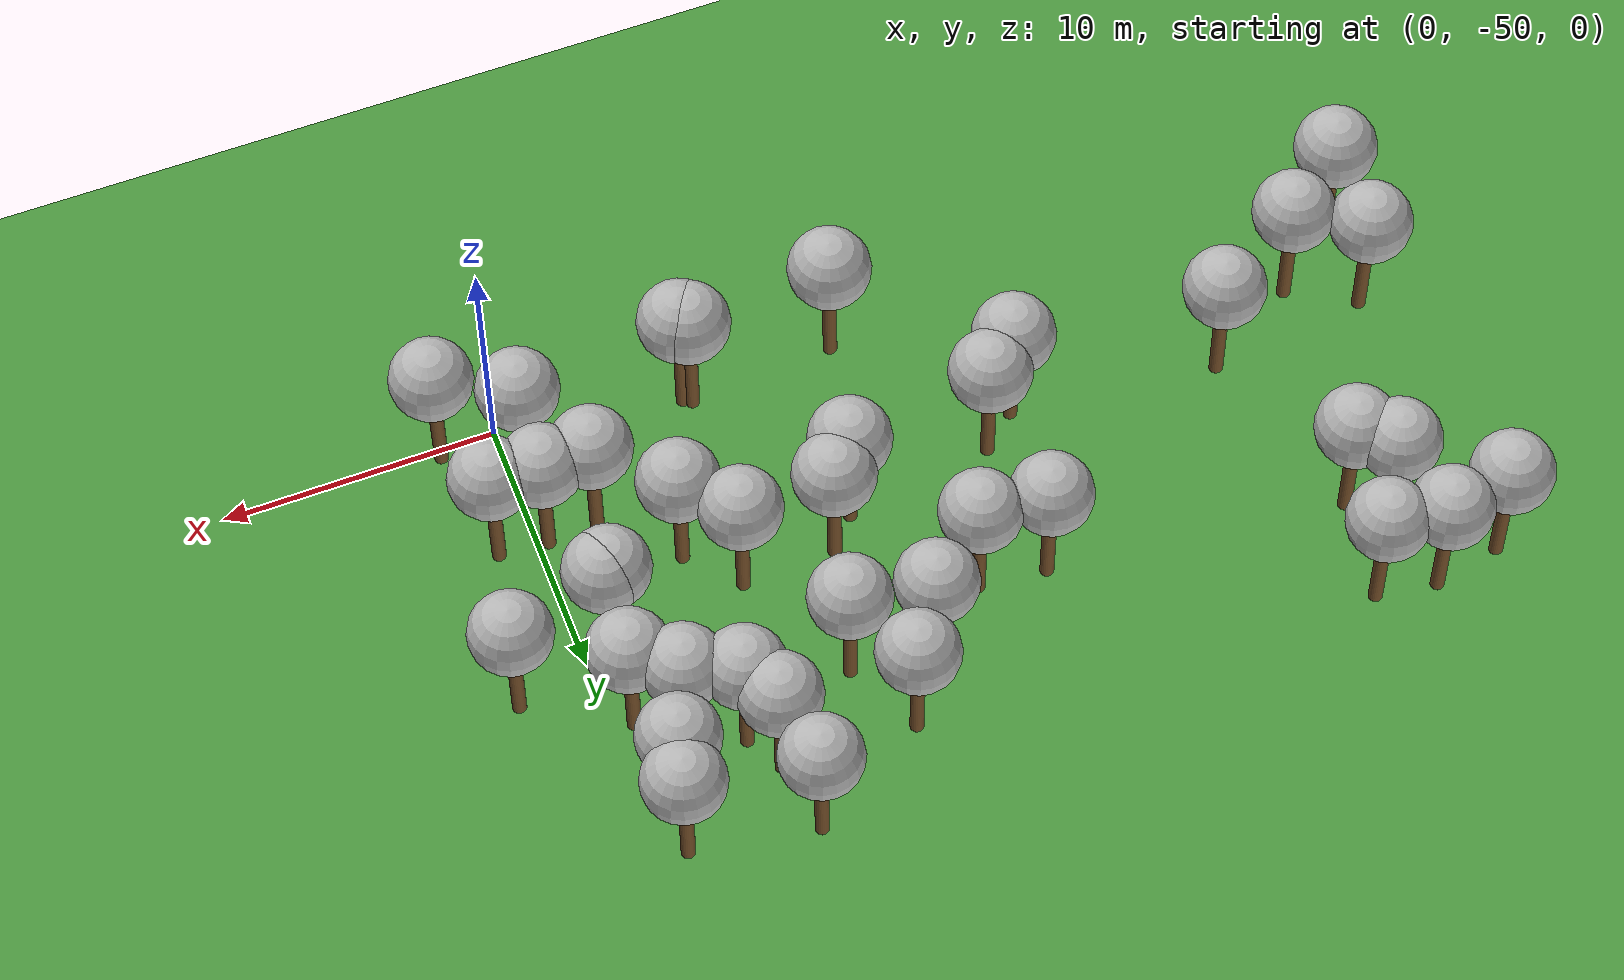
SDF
<sdf version="1.5">
 <world name="default">
  <model name="tree_simple491">
   <static>1</static>
   <link name="link">
    <pose>0 0 0.1 0 -0 0</pose>
    <collision name="collision_trunk">
     <pose>0 0 2 0 -0 0</pose>
     <geometry><cylinder><radius>0.25</radius><length>4</length></cylinder></geometry>
    </collision>
    <collision name="collision_treetop">
     <pose>0 0 5.2 0 -0 0</pose>
     <geometry><sphere><radius>1.5</radius></sphere></geometry>
    </collision>
    <visual name="trunk">
     <pose>0 0 2 0 -0 0</pose>
     <geometry><cylinder><radius>0.25</radius><length>4</length></cylinder></geometry>
     <material>
      <script>
       <uri>model://tree_simple/scripts</uri>
       <uri>model://tree_simple/materials/textures</uri>
       <name>TreeSimple/Trunk</name>
      </script>
     </material>
    </visual>
    <visual name="treetop">
     <pose>0 0 5.2 0 -0 0</pose>
     <geometry><sphere><radius>1.5</radius></sphere></geometry>
     <material>
      <script>
       <uri>model://tree_simple/scripts</uri>
       <uri>model://tree_simple/materials/textures</uri>
       <name>TreeSimple/Treetop</name>
      </script>
     </material>
    </visual>
   </link>
   <pose>-12.3902503735 -49.1082665042 0 0 -0 0</pose>
  </model>
  <model name="tree_simple458">
   <static>1</static>
   <link name="link">
    <pose>0 0 0.1 0 -0 0</pose>
    <collision name="collision_trunk">
     <pose>0 0 2 0 -0 0</pose>
     <geometry><cylinder><radius>0.25</radius><length>4</length></cylinder></geometry>
    </collision>
    <collision name="collision_treetop">
     <pose>0 0 5.2 0 -0 0</pose>
     <geometry><sphere><radius>1.5</radius></sphere></geometry>
    </collision>
    <visual name="trunk">
     <pose>0 0 2 0 -0 0</pose>
     <geometry><cylinder><radius>0.25</radius><length>4</length></cylinder></geometry>
     <material>
      <script>
       <uri>model://tree_simple/scripts</uri>
       <uri>model://tree_simple/materials/textures</uri>
       <name>TreeSimple/Trunk</name>
      </script>
     </material>
    </visual>
    <visual name="treetop">
     <pose>0 0 5.2 0 -0 0</pose>
     <geometry><sphere><radius>1.5</radius></sphere></geometry>
     <material>
      <script>
       <uri>model://tree_simple/scripts</uri>
       <uri>model://tree_simple/materials/textures</uri>
       <name>TreeSimple/Treetop</name>
      </script>
     </material>
    </visual>
   </link>
   <pose>2.06613671761 -49.6676263837 0 0 -0 0</pose>
  </model>
  <model name="tree_simple454">
   <static>1</static>
   <link name="link">
    <pose>0 0 0.1 0 -0 0</pose>
    <collision name="collision_trunk">
     <pose>0 0 2 0 -0 0</pose>
     <geometry><cylinder><radius>0.25</radius><length>4</length></cylinder></geometry>
    </collision>
    <collision name="collision_treetop">
     <pose>0 0 5.2 0 -0 0</pose>
     <geometry><sphere><radius>1.5</radius></sphere></geometry>
    </collision>
    <visual name="trunk">
     <pose>0 0 2 0 -0 0</pose>
     <geometry><cylinder><radius>0.25</radius><length>4</length></cylinder></geometry>
     <material>
      <script>
       <uri>model://tree_simple/scripts</uri>
       <uri>model://tree_simple/materials/textures</uri>
       <name>TreeSimple/Trunk</name>
      </script>
     </material>
    </visual>
    <visual name="treetop">
     <pose>0 0 5.2 0 -0 0</pose>
     <geometry><sphere><radius>1.5</radius></sphere></geometry>
     <material>
      <script>
       <uri>model://tree_simple/scripts</uri>
       <uri>model://tree_simple/materials/textures</uri>
       <name>TreeSimple/Treetop</name>
      </script>
     </material>
    </visual>
   </link>
   <pose>-1.19781681146 -40.4261160925 0 0 -0 0</pose>
  </model>
  <model name="tree_simple447">
   <static>1</static>
   <link name="link">
    <pose>0 0 0.1 0 -0 0</pose>
    <collision name="collision_trunk">
     <pose>0 0 2 0 -0 0</pose>
     <geometry><cylinder><radius>0.25</radius><length>4</length></cylinder></geometry>
    </collision>
    <collision name="collision_treetop">
     <pose>0 0 5.2 0 -0 0</pose>
     <geometry><sphere><radius>1.5</radius></sphere></geometry>
    </collision>
    <visual name="trunk">
     <pose>0 0 2 0 -0 0</pose>
     <geometry><cylinder><radius>0.25</radius><length>4</length></cylinder></geometry>
     <material>
      <script>
       <uri>model://tree_simple/scripts</uri>
       <uri>model://tree_simple/materials/textures</uri>
       <name>TreeSimple/Trunk</name>
      </script>
     </material>
    </visual>
    <visual name="treetop">
     <pose>0 0 5.2 0 -0 0</pose>
     <geometry><sphere><radius>1.5</radius></sphere></geometry>
     <material>
      <script>
       <uri>model://tree_simple/scripts</uri>
       <uri>model://tree_simple/materials/textures</uri>
       <name>TreeSimple/Treetop</name>
      </script>
     </material>
    </visual>
   </link>
   <pose>-6.1509747219 -41.0422803315 0 0 -0 0</pose>
  </model>
  <model name="tree_simple433">
   <static>1</static>
   <link name="link">
    <pose>0 0 0.1 0 -0 0</pose>
    <collision name="collision_trunk">
     <pose>0 0 2 0 -0 0</pose>
     <geometry><cylinder><radius>0.25</radius><length>4</length></cylinder></geometry>
    </collision>
    <collision name="collision_treetop">
     <pose>0 0 5.2 0 -0 0</pose>
     <geometry><sphere><radius>1.5</radius></sphere></geometry>
    </collision>
    <visual name="trunk">
     <pose>0 0 2 0 -0 0</pose>
     <geometry><cylinder><radius>0.25</radius><length>4</length></cylinder></geometry>
     <material>
      <script>
       <uri>model://tree_simple/scripts</uri>
       <uri>model://tree_simple/materials/textures</uri>
       <name>TreeSimple/Trunk</name>
      </script>
     </material>
    </visual>
    <visual name="treetop">
     <pose>0 0 5.2 0 -0 0</pose>
     <geometry><sphere><radius>1.5</radius></sphere></geometry>
     <material>
      <script>
       <uri>model://tree_simple/scripts</uri>
       <uri>model://tree_simple/materials/textures</uri>
       <name>TreeSimple/Treetop</name>
      </script>
     </material>
    </visual>
   </link>
   <pose>-27.0163612707 -36.6075625798 0 0 -0 0</pose>
  </model>
  <model name="tree_simple408">
   <static>1</static>
   <link name="link">
    <pose>0 0 0.1 0 -0 0</pose>
    <collision name="collision_trunk">
     <pose>0 0 2 0 -0 0</pose>
     <geometry><cylinder><radius>0.25</radius><length>4</length></cylinder></geometry>
    </collision>
    <collision name="collision_treetop">
     <pose>0 0 5.2 0 -0 0</pose>
     <geometry><sphere><radius>1.5</radius></sphere></geometry>
    </collision>
    <visual name="trunk">
     <pose>0 0 2 0 -0 0</pose>
     <geometry><cylinder><radius>0.25</radius><length>4</length></cylinder></geometry>
     <material>
      <script>
       <uri>model://tree_simple/scripts</uri>
       <uri>model://tree_simple/materials/textures</uri>
       <name>TreeSimple/Trunk</name>
      </script>
     </material>
    </visual>
    <visual name="treetop">
     <pose>0 0 5.2 0 -0 0</pose>
     <geometry><sphere><radius>1.5</radius></sphere></geometry>
     <material>
      <script>
       <uri>model://tree_simple/scripts</uri>
       <uri>model://tree_simple/materials/textures</uri>
       <name>TreeSimple/Treetop</name>
      </script>
     </material>
    </visual>
   </link>
   <pose>-16.0994347695 -43.1531583175 0 0 -0 0</pose>
  </model>
  <model name="tree_simple407">
   <static>1</static>
   <link name="link">
    <pose>0 0 0.1 0 -0 0</pose>
    <collision name="collision_trunk">
     <pose>0 0 2 0 -0 0</pose>
     <geometry><cylinder><radius>0.25</radius><length>4</length></cylinder></geometry>
    </collision>
    <collision name="collision_treetop">
     <pose>0 0 5.2 0 -0 0</pose>
     <geometry><sphere><radius>1.5</radius></sphere></geometry>
    </collision>
    <visual name="trunk">
     <pose>0 0 2 0 -0 0</pose>
     <geometry><cylinder><radius>0.25</radius><length>4</length></cylinder></geometry>
     <material>
      <script>
       <uri>model://tree_simple/scripts</uri>
       <uri>model://tree_simple/materials/textures</uri>
       <name>TreeSimple/Trunk</name>
      </script>
     </material>
    </visual>
    <visual name="treetop">
     <pose>0 0 5.2 0 -0 0</pose>
     <geometry><sphere><radius>1.5</radius></sphere></geometry>
     <material>
      <script>
       <uri>model://tree_simple/scripts</uri>
       <uri>model://tree_simple/materials/textures</uri>
       <name>TreeSimple/Treetop</name>
      </script>
     </material>
    </visual>
   </link>
   <pose>-31.2268758756 -33.0617209784 0 0 -0 0</pose>
  </model>
  <model name="tree_simple397">
   <static>1</static>
   <link name="link">
    <pose>0 0 0.1 0 -0 0</pose>
    <collision name="collision_trunk">
     <pose>0 0 2 0 -0 0</pose>
     <geometry><cylinder><radius>0.25</radius><length>4</length></cylinder></geometry>
    </collision>
    <collision name="collision_treetop">
     <pose>0 0 5.2 0 -0 0</pose>
     <geometry><sphere><radius>1.5</radius></sphere></geometry>
    </collision>
    <visual name="trunk">
     <pose>0 0 2 0 -0 0</pose>
     <geometry><cylinder><radius>0.25</radius><length>4</length></cylinder></geometry>
     <material>
      <script>
       <uri>model://tree_simple/scripts</uri>
       <uri>model://tree_simple/materials/textures</uri>
       <name>TreeSimple/Trunk</name>
      </script>
     </material>
    </visual>
    <visual name="treetop">
     <pose>0 0 5.2 0 -0 0</pose>
     <geometry><sphere><radius>1.5</radius></sphere></geometry>
     <material>
      <script>
       <uri>model://tree_simple/scripts</uri>
       <uri>model://tree_simple/materials/textures</uri>
       <name>TreeSimple/Treetop</name>
      </script>
     </material>
    </visual>
   </link>
   <pose>-11.3370979395 -35.9987020926 0 0 -0 0</pose>
  </model>
  <model name="tree_simple382">
   <static>1</static>
   <link name="link">
    <pose>0 0 0.1 0 -0 0</pose>
    <collision name="collision_trunk">
     <pose>0 0 2 0 -0 0</pose>
     <geometry><cylinder><radius>0.25</radius><length>4</length></cylinder></geometry>
    </collision>
    <collision name="collision_treetop">
     <pose>0 0 5.2 0 -0 0</pose>
     <geometry><sphere><radius>1.5</radius></sphere></geometry>
    </collision>
    <visual name="trunk">
     <pose>0 0 2 0 -0 0</pose>
     <geometry><cylinder><radius>0.25</radius><length>4</length></cylinder></geometry>
     <material>
      <script>
       <uri>model://tree_simple/scripts</uri>
       <uri>model://tree_simple/materials/textures</uri>
       <name>TreeSimple/Trunk</name>
      </script>
     </material>
    </visual>
    <visual name="treetop">
     <pose>0 0 5.2 0 -0 0</pose>
     <geometry><sphere><radius>1.5</radius></sphere></geometry>
     <material>
      <script>
       <uri>model://tree_simple/scripts</uri>
       <uri>model://tree_simple/materials/textures</uri>
       <name>TreeSimple/Treetop</name>
      </script>
     </material>
    </visual>
   </link>
   <pose>-13.7339502639 -38.0385425652 0 0 -0 0</pose>
  </model>
  <model name="tree_simple368">
   <static>1</static>
   <link name="link">
    <pose>0 0 0.1 0 -0 0</pose>
    <collision name="collision_trunk">
     <pose>0 0 2 0 -0 0</pose>
     <geometry><cylinder><radius>0.25</radius><length>4</length></cylinder></geometry>
    </collision>
    <collision name="collision_treetop">
     <pose>0 0 5.2 0 -0 0</pose>
     <geometry><sphere><radius>1.5</radius></sphere></geometry>
    </collision>
    <visual name="trunk">
     <pose>0 0 2 0 -0 0</pose>
     <geometry><cylinder><radius>0.25</radius><length>4</length></cylinder></geometry>
     <material>
      <script>
       <uri>model://tree_simple/scripts</uri>
       <uri>model://tree_simple/materials/textures</uri>
       <name>TreeSimple/Trunk</name>
      </script>
     </material>
    </visual>
    <visual name="treetop">
     <pose>0 0 5.2 0 -0 0</pose>
     <geometry><sphere><radius>1.5</radius></sphere></geometry>
     <material>
      <script>
       <uri>model://tree_simple/scripts</uri>
       <uri>model://tree_simple/materials/textures</uri>
       <name>TreeSimple/Treetop</name>
      </script>
     </material>
    </visual>
   </link>
   <pose>-2.27490769551 -35.975306792 0 0 -0 0</pose>
  </model>
  <model name="tree_simple357">
   <static>1</static>
   <link name="link">
    <pose>0 0 0.1 0 -0 0</pose>
    <collision name="collision_trunk">
     <pose>0 0 2 0 -0 0</pose>
     <geometry><cylinder><radius>0.25</radius><length>4</length></cylinder></geometry>
    </collision>
    <collision name="collision_treetop">
     <pose>0 0 5.2 0 -0 0</pose>
     <geometry><sphere><radius>1.5</radius></sphere></geometry>
    </collision>
    <visual name="trunk">
     <pose>0 0 2 0 -0 0</pose>
     <geometry><cylinder><radius>0.25</radius><length>4</length></cylinder></geometry>
     <material>
      <script>
       <uri>model://tree_simple/scripts</uri>
       <uri>model://tree_simple/materials/textures</uri>
       <name>TreeSimple/Trunk</name>
      </script>
     </material>
    </visual>
    <visual name="treetop">
     <pose>0 0 5.2 0 -0 0</pose>
     <geometry><sphere><radius>1.5</radius></sphere></geometry>
     <material>
      <script>
       <uri>model://tree_simple/scripts</uri>
       <uri>model://tree_simple/materials/textures</uri>
       <name>TreeSimple/Treetop</name>
      </script>
     </material>
    </visual>
   </link>
   <pose>-28.5404779553 -45.5660911112 0 0 -0 0</pose>
  </model>
  <model name="tree_simple348">
   <static>1</static>
   <link name="link">
    <pose>0 0 0.1 0 -0 0</pose>
    <collision name="collision_trunk">
     <pose>0 0 2 0 -0 0</pose>
     <geometry><cylinder><radius>0.25</radius><length>4</length></cylinder></geometry>
    </collision>
    <collision name="collision_treetop">
     <pose>0 0 5.2 0 -0 0</pose>
     <geometry><sphere><radius>1.5</radius></sphere></geometry>
    </collision>
    <visual name="trunk">
     <pose>0 0 2 0 -0 0</pose>
     <geometry><cylinder><radius>0.25</radius><length>4</length></cylinder></geometry>
     <material>
      <script>
       <uri>model://tree_simple/scripts</uri>
       <uri>model://tree_simple/materials/textures</uri>
       <name>TreeSimple/Trunk</name>
      </script>
     </material>
    </visual>
    <visual name="treetop">
     <pose>0 0 5.2 0 -0 0</pose>
     <geometry><sphere><radius>1.5</radius></sphere></geometry>
     <material>
      <script>
       <uri>model://tree_simple/scripts</uri>
       <uri>model://tree_simple/materials/textures</uri>
       <name>TreeSimple/Treetop</name>
      </script>
     </material>
    </visual>
   </link>
   <pose>-31.0103174471 -47.5688671712 0 0 -0 0</pose>
  </model>
  <model name="tree_simple344">
   <static>1</static>
   <link name="link">
    <pose>0 0 0.1 0 -0 0</pose>
    <collision name="collision_trunk">
     <pose>0 0 2 0 -0 0</pose>
     <geometry><cylinder><radius>0.25</radius><length>4</length></cylinder></geometry>
    </collision>
    <collision name="collision_treetop">
     <pose>0 0 5.2 0 -0 0</pose>
     <geometry><sphere><radius>1.5</radius></sphere></geometry>
    </collision>
    <visual name="trunk">
     <pose>0 0 2 0 -0 0</pose>
     <geometry><cylinder><radius>0.25</radius><length>4</length></cylinder></geometry>
     <material>
      <script>
       <uri>model://tree_simple/scripts</uri>
       <uri>model://tree_simple/materials/textures</uri>
       <name>TreeSimple/Trunk</name>
      </script>
     </material>
    </visual>
    <visual name="treetop">
     <pose>0 0 5.2 0 -0 0</pose>
     <geometry><sphere><radius>1.5</radius></sphere></geometry>
     <material>
      <script>
       <uri>model://tree_simple/scripts</uri>
       <uri>model://tree_simple/materials/textures</uri>
       <name>TreeSimple/Treetop</name>
      </script>
     </material>
    </visual>
   </link>
   <pose>-1.01406181855 -40.356708741 0 0 -0 0</pose>
  </model>
  <model name="tree_simple334">
   <static>1</static>
   <link name="link">
    <pose>0 0 0.1 0 -0 0</pose>
    <collision name="collision_trunk">
     <pose>0 0 2 0 -0 0</pose>
     <geometry><cylinder><radius>0.25</radius><length>4</length></cylinder></geometry>
    </collision>
    <collision name="collision_treetop">
     <pose>0 0 5.2 0 -0 0</pose>
     <geometry><sphere><radius>1.5</radius></sphere></geometry>
    </collision>
    <visual name="trunk">
     <pose>0 0 2 0 -0 0</pose>
     <geometry><cylinder><radius>0.25</radius><length>4</length></cylinder></geometry>
     <material>
      <script>
       <uri>model://tree_simple/scripts</uri>
       <uri>model://tree_simple/materials/textures</uri>
       <name>TreeSimple/Trunk</name>
      </script>
     </material>
    </visual>
    <visual name="treetop">
     <pose>0 0 5.2 0 -0 0</pose>
     <geometry><sphere><radius>1.5</radius></sphere></geometry>
     <material>
      <script>
       <uri>model://tree_simple/scripts</uri>
       <uri>model://tree_simple/materials/textures</uri>
       <name>TreeSimple/Treetop</name>
      </script>
     </material>
    </visual>
   </link>
   <pose>-4.1581298625 -35.2035688942 0 0 -0 0</pose>
  </model>
  <model name="tree_simple305">
   <static>1</static>
   <link name="link">
    <pose>0 0 0.1 0 -0 0</pose>
    <collision name="collision_trunk">
     <pose>0 0 2 0 -0 0</pose>
     <geometry><cylinder><radius>0.25</radius><length>4</length></cylinder></geometry>
    </collision>
    <collision name="collision_treetop">
     <pose>0 0 5.2 0 -0 0</pose>
     <geometry><sphere><radius>1.5</radius></sphere></geometry>
    </collision>
    <visual name="trunk">
     <pose>0 0 2 0 -0 0</pose>
     <geometry><cylinder><radius>0.25</radius><length>4</length></cylinder></geometry>
     <material>
      <script>
       <uri>model://tree_simple/scripts</uri>
       <uri>model://tree_simple/materials/textures</uri>
       <name>TreeSimple/Trunk</name>
      </script>
     </material>
    </visual>
    <visual name="treetop">
     <pose>0 0 5.2 0 -0 0</pose>
     <geometry><sphere><radius>1.5</radius></sphere></geometry>
     <material>
      <script>
       <uri>model://tree_simple/scripts</uri>
       <uri>model://tree_simple/materials/textures</uri>
       <name>TreeSimple/Treetop</name>
      </script>
     </material>
    </visual>
   </link>
   <pose>-16.2250054706 -37.82270562 0 0 -0 0</pose>
  </model>
  <model name="tree_simple285">
   <static>1</static>
   <link name="link">
    <pose>0 0 0.1 0 -0 0</pose>
    <collision name="collision_trunk">
     <pose>0 0 2 0 -0 0</pose>
     <geometry><cylinder><radius>0.25</radius><length>4</length></cylinder></geometry>
    </collision>
    <collision name="collision_treetop">
     <pose>0 0 5.2 0 -0 0</pose>
     <geometry><sphere><radius>1.5</radius></sphere></geometry>
    </collision>
    <visual name="trunk">
     <pose>0 0 2 0 -0 0</pose>
     <geometry><cylinder><radius>0.25</radius><length>4</length></cylinder></geometry>
     <material>
      <script>
       <uri>model://tree_simple/scripts</uri>
       <uri>model://tree_simple/materials/textures</uri>
       <name>TreeSimple/Trunk</name>
      </script>
     </material>
    </visual>
    <visual name="treetop">
     <pose>0 0 5.2 0 -0 0</pose>
     <geometry><sphere><radius>1.5</radius></sphere></geometry>
     <material>
      <script>
       <uri>model://tree_simple/scripts</uri>
       <uri>model://tree_simple/materials/textures</uri>
       <name>TreeSimple/Treetop</name>
      </script>
     </material>
    </visual>
   </link>
   <pose>-0.758587547347 -37.1758267931 0 0 -0 0</pose>
  </model>
  <model name="tree_simple257">
   <static>1</static>
   <link name="link">
    <pose>0 0 0.1 0 -0 0</pose>
    <collision name="collision_trunk">
     <pose>0 0 2 0 -0 0</pose>
     <geometry><cylinder><radius>0.25</radius><length>4</length></cylinder></geometry>
    </collision>
    <collision name="collision_treetop">
     <pose>0 0 5.2 0 -0 0</pose>
     <geometry><sphere><radius>1.5</radius></sphere></geometry>
    </collision>
    <visual name="trunk">
     <pose>0 0 2 0 -0 0</pose>
     <geometry><cylinder><radius>0.25</radius><length>4</length></cylinder></geometry>
     <material>
      <script>
       <uri>model://tree_simple/scripts</uri>
       <uri>model://tree_simple/materials/textures</uri>
       <name>TreeSimple/Trunk</name>
      </script>
     </material>
    </visual>
    <visual name="treetop">
     <pose>0 0 5.2 0 -0 0</pose>
     <geometry><sphere><radius>1.5</radius></sphere></geometry>
     <material>
      <script>
       <uri>model://tree_simple/scripts</uri>
       <uri>model://tree_simple/materials/textures</uri>
       <name>TreeSimple/Treetop</name>
      </script>
     </material>
    </visual>
   </link>
   <pose>-17.4076670765 -44.276485645 0 0 -0 0</pose>
  </model>
  <model name="tree_simple227">
   <static>1</static>
   <link name="link">
    <pose>0 0 0.1 0 -0 0</pose>
    <collision name="collision_trunk">
     <pose>0 0 2 0 -0 0</pose>
     <geometry><cylinder><radius>0.25</radius><length>4</length></cylinder></geometry>
    </collision>
    <collision name="collision_treetop">
     <pose>0 0 5.2 0 -0 0</pose>
     <geometry><sphere><radius>1.5</radius></sphere></geometry>
    </collision>
    <visual name="trunk">
     <pose>0 0 2 0 -0 0</pose>
     <geometry><cylinder><radius>0.25</radius><length>4</length></cylinder></geometry>
     <material>
      <script>
       <uri>model://tree_simple/scripts</uri>
       <uri>model://tree_simple/materials/textures</uri>
       <name>TreeSimple/Trunk</name>
      </script>
     </material>
    </visual>
    <visual name="treetop">
     <pose>0 0 5.2 0 -0 0</pose>
     <geometry><sphere><radius>1.5</radius></sphere></geometry>
     <material>
      <script>
       <uri>model://tree_simple/scripts</uri>
       <uri>model://tree_simple/materials/textures</uri>
       <name>TreeSimple/Treetop</name>
      </script>
     </material>
    </visual>
   </link>
   <pose>-10.5932066879 -42.3249701995 0 0 -0 0</pose>
  </model>
  <model name="tree_simple223">
   <static>1</static>
   <link name="link">
    <pose>0 0 0.1 0 -0 0</pose>
    <collision name="collision_trunk">
     <pose>0 0 2 0 -0 0</pose>
     <geometry><cylinder><radius>0.25</radius><length>4</length></cylinder></geometry>
    </collision>
    <collision name="collision_treetop">
     <pose>0 0 5.2 0 -0 0</pose>
     <geometry><sphere><radius>1.5</radius></sphere></geometry>
    </collision>
    <visual name="trunk">
     <pose>0 0 2 0 -0 0</pose>
     <geometry><cylinder><radius>0.25</radius><length>4</length></cylinder></geometry>
     <material>
      <script>
       <uri>model://tree_simple/scripts</uri>
       <uri>model://tree_simple/materials/textures</uri>
       <name>TreeSimple/Trunk</name>
      </script>
     </material>
    </visual>
    <visual name="treetop">
     <pose>0 0 5.2 0 -0 0</pose>
     <geometry><sphere><radius>1.5</radius></sphere></geometry>
     <material>
      <script>
       <uri>model://tree_simple/scripts</uri>
       <uri>model://tree_simple/materials/textures</uri>
       <name>TreeSimple/Treetop</name>
      </script>
     </material>
    </visual>
   </link>
   <pose>-0.831429515675 -31.9083877979 0 0 -0 0</pose>
  </model>
  <model name="tree_simple198">
   <static>1</static>
   <link name="link">
    <pose>0 0 0.1 0 -0 0</pose>
    <collision name="collision_trunk">
     <pose>0 0 2 0 -0 0</pose>
     <geometry><cylinder><radius>0.25</radius><length>4</length></cylinder></geometry>
    </collision>
    <collision name="collision_treetop">
     <pose>0 0 5.2 0 -0 0</pose>
     <geometry><sphere><radius>1.5</radius></sphere></geometry>
    </collision>
    <visual name="trunk">
     <pose>0 0 2 0 -0 0</pose>
     <geometry><cylinder><radius>0.25</radius><length>4</length></cylinder></geometry>
     <material>
      <script>
       <uri>model://tree_simple/scripts</uri>
       <uri>model://tree_simple/materials/textures</uri>
       <name>TreeSimple/Trunk</name>
      </script>
     </material>
    </visual>
    <visual name="treetop">
     <pose>0 0 5.2 0 -0 0</pose>
     <geometry><sphere><radius>1.5</radius></sphere></geometry>
     <material>
      <script>
       <uri>model://tree_simple/scripts</uri>
       <uri>model://tree_simple/materials/textures</uri>
       <name>TreeSimple/Treetop</name>
      </script>
     </material>
    </visual>
   </link>
   <pose>-28.1666068892 -35.6025820701 0 0 -0 0</pose>
  </model>
  <model name="tree_simple143">
   <static>1</static>
   <link name="link">
    <pose>0 0 0.1 0 -0 0</pose>
    <collision name="collision_trunk">
     <pose>0 0 2 0 -0 0</pose>
     <geometry><cylinder><radius>0.25</radius><length>4</length></cylinder></geometry>
    </collision>
    <collision name="collision_treetop">
     <pose>0 0 5.2 0 -0 0</pose>
     <geometry><sphere><radius>1.5</radius></sphere></geometry>
    </collision>
    <visual name="trunk">
     <pose>0 0 2 0 -0 0</pose>
     <geometry><cylinder><radius>0.25</radius><length>4</length></cylinder></geometry>
     <material>
      <script>
       <uri>model://tree_simple/scripts</uri>
       <uri>model://tree_simple/materials/textures</uri>
       <name>TreeSimple/Trunk</name>
      </script>
     </material>
    </visual>
    <visual name="treetop">
     <pose>0 0 5.2 0 -0 0</pose>
     <geometry><sphere><radius>1.5</radius></sphere></geometry>
     <material>
      <script>
       <uri>model://tree_simple/scripts</uri>
       <uri>model://tree_simple/materials/textures</uri>
       <name>TreeSimple/Treetop</name>
      </script>
     </material>
    </visual>
   </link>
   <pose>-9.58958340045 -41.1660757416 0 0 -0 0</pose>
  </model>
  <model name="tree_simple142">
   <static>1</static>
   <link name="link">
    <pose>0 0 0.1 0 -0 0</pose>
    <collision name="collision_trunk">
     <pose>0 0 2 0 -0 0</pose>
     <geometry><cylinder><radius>0.25</radius><length>4</length></cylinder></geometry>
    </collision>
    <collision name="collision_treetop">
     <pose>0 0 5.2 0 -0 0</pose>
     <geometry><sphere><radius>1.5</radius></sphere></geometry>
    </collision>
    <visual name="trunk">
     <pose>0 0 2 0 -0 0</pose>
     <geometry><cylinder><radius>0.25</radius><length>4</length></cylinder></geometry>
     <material>
      <script>
       <uri>model://tree_simple/scripts</uri>
       <uri>model://tree_simple/materials/textures</uri>
       <name>TreeSimple/Trunk</name>
      </script>
     </material>
    </visual>
    <visual name="treetop">
     <pose>0 0 5.2 0 -0 0</pose>
     <geometry><sphere><radius>1.5</radius></sphere></geometry>
     <material>
      <script>
       <uri>model://tree_simple/scripts</uri>
       <uri>model://tree_simple/materials/textures</uri>
       <name>TreeSimple/Treetop</name>
      </script>
     </material>
    </visual>
   </link>
   <pose>2.70227648478 -39.1925835725 0 0 -0 0</pose>
  </model>
  <model name="tree_simple126">
   <static>1</static>
   <link name="link">
    <pose>0 0 0.1 0 -0 0</pose>
    <collision name="collision_trunk">
     <pose>0 0 2 0 -0 0</pose>
     <geometry><cylinder><radius>0.25</radius><length>4</length></cylinder></geometry>
    </collision>
    <collision name="collision_treetop">
     <pose>0 0 5.2 0 -0 0</pose>
     <geometry><sphere><radius>1.5</radius></sphere></geometry>
    </collision>
    <visual name="trunk">
     <pose>0 0 2 0 -0 0</pose>
     <geometry><cylinder><radius>0.25</radius><length>4</length></cylinder></geometry>
     <material>
      <script>
       <uri>model://tree_simple/scripts</uri>
       <uri>model://tree_simple/materials/textures</uri>
       <name>TreeSimple/Trunk</name>
      </script>
     </material>
    </visual>
    <visual name="treetop">
     <pose>0 0 5.2 0 -0 0</pose>
     <geometry><sphere><radius>1.5</radius></sphere></geometry>
     <material>
      <script>
       <uri>model://tree_simple/scripts</uri>
       <uri>model://tree_simple/materials/textures</uri>
       <name>TreeSimple/Treetop</name>
      </script>
     </material>
    </visual>
   </link>
   <pose>-8.40128153864 -36.4846341971 0 0 -0 0</pose>
  </model>
  <model name="tree_simple114">
   <static>1</static>
   <link name="link">
    <pose>0 0 0.1 0 -0 0</pose>
    <collision name="collision_trunk">
     <pose>0 0 2 0 -0 0</pose>
     <geometry><cylinder><radius>0.25</radius><length>4</length></cylinder></geometry>
    </collision>
    <collision name="collision_treetop">
     <pose>0 0 5.2 0 -0 0</pose>
     <geometry><sphere><radius>1.5</radius></sphere></geometry>
    </collision>
    <visual name="trunk">
     <pose>0 0 2 0 -0 0</pose>
     <geometry><cylinder><radius>0.25</radius><length>4</length></cylinder></geometry>
     <material>
      <script>
       <uri>model://tree_simple/scripts</uri>
       <uri>model://tree_simple/materials/textures</uri>
       <name>TreeSimple/Trunk</name>
      </script>
     </material>
    </visual>
    <visual name="treetop">
     <pose>0 0 5.2 0 -0 0</pose>
     <geometry><sphere><radius>1.5</radius></sphere></geometry>
     <material>
      <script>
       <uri>model://tree_simple/scripts</uri>
       <uri>model://tree_simple/materials/textures</uri>
       <name>TreeSimple/Treetop</name>
      </script>
     </material>
    </visual>
   </link>
   <pose>-2.17757547104 -45.1286714355 0 0 -0 0</pose>
  </model>
  <model name="tree_simple108">
   <static>1</static>
   <link name="link">
    <pose>0 0 0.1 0 -0 0</pose>
    <collision name="collision_trunk">
     <pose>0 0 2 0 -0 0</pose>
     <geometry><cylinder><radius>0.25</radius><length>4</length></cylinder></geometry>
    </collision>
    <collision name="collision_treetop">
     <pose>0 0 5.2 0 -0 0</pose>
     <geometry><sphere><radius>1.5</radius></sphere></geometry>
    </collision>
    <visual name="trunk">
     <pose>0 0 2 0 -0 0</pose>
     <geometry><cylinder><radius>0.25</radius><length>4</length></cylinder></geometry>
     <material>
      <script>
       <uri>model://tree_simple/scripts</uri>
       <uri>model://tree_simple/materials/textures</uri>
       <name>TreeSimple/Trunk</name>
      </script>
     </material>
    </visual>
    <visual name="treetop">
     <pose>0 0 5.2 0 -0 0</pose>
     <geometry><sphere><radius>1.5</radius></sphere></geometry>
     <material>
      <script>
       <uri>model://tree_simple/scripts</uri>
       <uri>model://tree_simple/materials/textures</uri>
       <name>TreeSimple/Treetop</name>
      </script>
     </material>
    </visual>
   </link>
   <pose>1.42931989254 -45.1660279448 0 0 -0 0</pose>
  </model>
  <model name="tree_simple107">
   <static>1</static>
   <link name="link">
    <pose>0 0 0.1 0 -0 0</pose>
    <collision name="collision_trunk">
     <pose>0 0 2 0 -0 0</pose>
     <geometry><cylinder><radius>0.25</radius><length>4</length></cylinder></geometry>
    </collision>
    <collision name="collision_treetop">
     <pose>0 0 5.2 0 -0 0</pose>
     <geometry><sphere><radius>1.5</radius></sphere></geometry>
    </collision>
    <visual name="trunk">
     <pose>0 0 2 0 -0 0</pose>
     <geometry><cylinder><radius>0.25</radius><length>4</length></cylinder></geometry>
     <material>
      <script>
       <uri>model://tree_simple/scripts</uri>
       <uri>model://tree_simple/materials/textures</uri>
       <name>TreeSimple/Trunk</name>
      </script>
     </material>
    </visual>
    <visual name="treetop">
     <pose>0 0 5.2 0 -0 0</pose>
     <geometry><sphere><radius>1.5</radius></sphere></geometry>
     <material>
      <script>
       <uri>model://tree_simple/scripts</uri>
       <uri>model://tree_simple/materials/textures</uri>
       <name>TreeSimple/Treetop</name>
      </script>
     </material>
    </visual>
   </link>
   <pose>-1.23057164025 -33.5425651467 0 0 -0 0</pose>
  </model>
  <model name="tree_simple102">
   <static>1</static>
   <link name="link">
    <pose>0 0 0.1 0 -0 0</pose>
    <collision name="collision_trunk">
     <pose>0 0 2 0 -0 0</pose>
     <geometry><cylinder><radius>0.25</radius><length>4</length></cylinder></geometry>
    </collision>
    <collision name="collision_treetop">
     <pose>0 0 5.2 0 -0 0</pose>
     <geometry><sphere><radius>1.5</radius></sphere></geometry>
    </collision>
    <visual name="trunk">
     <pose>0 0 2 0 -0 0</pose>
     <geometry><cylinder><radius>0.25</radius><length>4</length></cylinder></geometry>
     <material>
      <script>
       <uri>model://tree_simple/scripts</uri>
       <uri>model://tree_simple/materials/textures</uri>
       <name>TreeSimple/Trunk</name>
      </script>
     </material>
    </visual>
    <visual name="treetop">
     <pose>0 0 5.2 0 -0 0</pose>
     <geometry><sphere><radius>1.5</radius></sphere></geometry>
     <material>
      <script>
       <uri>model://tree_simple/scripts</uri>
       <uri>model://tree_simple/materials/textures</uri>
       <name>TreeSimple/Treetop</name>
      </script>
     </material>
    </visual>
   </link>
   <pose>-9.77870020383 -33.6944059178 0 0 -0 0</pose>
  </model>
  <model name="tree_simple90">
   <static>1</static>
   <link name="link">
    <pose>0 0 0.1 0 -0 0</pose>
    <collision name="collision_trunk">
     <pose>0 0 2 0 -0 0</pose>
     <geometry><cylinder><radius>0.25</radius><length>4</length></cylinder></geometry>
    </collision>
    <collision name="collision_treetop">
     <pose>0 0 5.2 0 -0 0</pose>
     <geometry><sphere><radius>1.5</radius></sphere></geometry>
    </collision>
    <visual name="trunk">
     <pose>0 0 2 0 -0 0</pose>
     <geometry><cylinder><radius>0.25</radius><length>4</length></cylinder></geometry>
     <material>
      <script>
       <uri>model://tree_simple/scripts</uri>
       <uri>model://tree_simple/materials/textures</uri>
       <name>TreeSimple/Trunk</name>
      </script>
     </material>
    </visual>
    <visual name="treetop">
     <pose>0 0 5.2 0 -0 0</pose>
     <geometry><sphere><radius>1.5</radius></sphere></geometry>
     <material>
      <script>
       <uri>model://tree_simple/scripts</uri>
       <uri>model://tree_simple/materials/textures</uri>
       <name>TreeSimple/Treetop</name>
      </script>
     </material>
    </visual>
   </link>
   <pose>-7.02064767481 -48.7132309456 0 0 -0 0</pose>
  </model>
  <model name="tree_simple87">
   <static>1</static>
   <link name="link">
    <pose>0 0 0.1 0 -0 0</pose>
    <collision name="collision_trunk">
     <pose>0 0 2 0 -0 0</pose>
     <geometry><cylinder><radius>0.25</radius><length>4</length></cylinder></geometry>
    </collision>
    <collision name="collision_treetop">
     <pose>0 0 5.2 0 -0 0</pose>
     <geometry><sphere><radius>1.5</radius></sphere></geometry>
    </collision>
    <visual name="trunk">
     <pose>0 0 2 0 -0 0</pose>
     <geometry><cylinder><radius>0.25</radius><length>4</length></cylinder></geometry>
     <material>
      <script>
       <uri>model://tree_simple/scripts</uri>
       <uri>model://tree_simple/materials/textures</uri>
       <name>TreeSimple/Trunk</name>
      </script>
     </material>
    </visual>
    <visual name="treetop">
     <pose>0 0 5.2 0 -0 0</pose>
     <geometry><sphere><radius>1.5</radius></sphere></geometry>
     <material>
      <script>
       <uri>model://tree_simple/scripts</uri>
       <uri>model://tree_simple/materials/textures</uri>
       <name>TreeSimple/Treetop</name>
      </script>
     </material>
    </visual>
   </link>
   <pose>-0.355859953676 -45.0259101281 0 0 -0 0</pose>
  </model>
  <model name="tree_simple71">
   <static>1</static>
   <link name="link">
    <pose>0 0 0.1 0 -0 0</pose>
    <collision name="collision_trunk">
     <pose>0 0 2 0 -0 0</pose>
     <geometry><cylinder><radius>0.25</radius><length>4</length></cylinder></geometry>
    </collision>
    <collision name="collision_treetop">
     <pose>0 0 5.2 0 -0 0</pose>
     <geometry><sphere><radius>1.5</radius></sphere></geometry>
    </collision>
    <visual name="trunk">
     <pose>0 0 2 0 -0 0</pose>
     <geometry><cylinder><radius>0.25</radius><length>4</length></cylinder></geometry>
     <material>
      <script>
       <uri>model://tree_simple/scripts</uri>
       <uri>model://tree_simple/materials/textures</uri>
       <name>TreeSimple/Trunk</name>
      </script>
     </material>
    </visual>
    <visual name="treetop">
     <pose>0 0 5.2 0 -0 0</pose>
     <geometry><sphere><radius>1.5</radius></sphere></geometry>
     <material>
      <script>
       <uri>model://tree_simple/scripts</uri>
       <uri>model://tree_simple/materials/textures</uri>
       <name>TreeSimple/Treetop</name>
      </script>
     </material>
    </visual>
   </link>
   <pose>-30.8835620434 -44.1797881367 0 0 -0 0</pose>
  </model>
  <model name="tree_simple58">
   <static>1</static>
   <link name="link">
    <pose>0 0 0.1 0 -0 0</pose>
    <collision name="collision_trunk">
     <pose>0 0 2 0 -0 0</pose>
     <geometry><cylinder><radius>0.25</radius><length>4</length></cylinder></geometry>
    </collision>
    <collision name="collision_treetop">
     <pose>0 0 5.2 0 -0 0</pose>
     <geometry><sphere><radius>1.5</radius></sphere></geometry>
    </collision>
    <visual name="trunk">
     <pose>0 0 2 0 -0 0</pose>
     <geometry><cylinder><radius>0.25</radius><length>4</length></cylinder></geometry>
     <material>
      <script>
       <uri>model://tree_simple/scripts</uri>
       <uri>model://tree_simple/materials/textures</uri>
       <name>TreeSimple/Trunk</name>
      </script>
     </material>
    </visual>
    <visual name="treetop">
     <pose>0 0 5.2 0 -0 0</pose>
     <geometry><sphere><radius>1.5</radius></sphere></geometry>
     <material>
      <script>
       <uri>model://tree_simple/scripts</uri>
       <uri>model://tree_simple/materials/textures</uri>
       <name>TreeSimple/Treetop</name>
      </script>
     </material>
    </visual>
   </link>
   <pose>-4.91491945588 -33.8245636998 0 0 -0 0</pose>
  </model>
  <model name="tree_simple51">
   <static>1</static>
   <link name="link">
    <pose>0 0 0.1 0 -0 0</pose>
    <collision name="collision_trunk">
     <pose>0 0 2 0 -0 0</pose>
     <geometry><cylinder><radius>0.25</radius><length>4</length></cylinder></geometry>
    </collision>
    <collision name="collision_treetop">
     <pose>0 0 5.2 0 -0 0</pose>
     <geometry><sphere><radius>1.5</radius></sphere></geometry>
    </collision>
    <visual name="trunk">
     <pose>0 0 2 0 -0 0</pose>
     <geometry><cylinder><radius>0.25</radius><length>4</length></cylinder></geometry>
     <material>
      <script>
       <uri>model://tree_simple/scripts</uri>
       <uri>model://tree_simple/materials/textures</uri>
       <name>TreeSimple/Trunk</name>
      </script>
     </material>
    </visual>
    <visual name="treetop">
     <pose>0 0 5.2 0 -0 0</pose>
     <geometry><sphere><radius>1.5</radius></sphere></geometry>
     <material>
      <script>
       <uri>model://tree_simple/scripts</uri>
       <uri>model://tree_simple/materials/textures</uri>
       <name>TreeSimple/Treetop</name>
      </script>
     </material>
    </visual>
   </link>
   <pose>-0.589457780756 -48.2328311378 0 0 -0 0</pose>
  </model>
  <model name="tree_simple35">
   <static>1</static>
   <link name="link">
    <pose>0 0 0.1 0 -0 0</pose>
    <collision name="collision_trunk">
     <pose>0 0 2 0 -0 0</pose>
     <geometry><cylinder><radius>0.25</radius><length>4</length></cylinder></geometry>
    </collision>
    <collision name="collision_treetop">
     <pose>0 0 5.2 0 -0 0</pose>
     <geometry><sphere><radius>1.5</radius></sphere></geometry>
    </collision>
    <visual name="trunk">
     <pose>0 0 2 0 -0 0</pose>
     <geometry><cylinder><radius>0.25</radius><length>4</length></cylinder></geometry>
     <material>
      <script>
       <uri>model://tree_simple/scripts</uri>
       <uri>model://tree_simple/materials/textures</uri>
       <name>TreeSimple/Trunk</name>
      </script>
     </material>
    </visual>
    <visual name="treetop">
     <pose>0 0 5.2 0 -0 0</pose>
     <geometry><sphere><radius>1.5</radius></sphere></geometry>
     <material>
      <script>
       <uri>model://tree_simple/scripts</uri>
       <uri>model://tree_simple/materials/textures</uri>
       <name>TreeSimple/Treetop</name>
      </script>
     </material>
    </visual>
   </link>
   <pose>-26.5218868534 -32.8279754305 0 0 -0 0</pose>
  </model>
  <model name="tree_simple27">
   <static>1</static>
   <link name="link">
    <pose>0 0 0.1 0 -0 0</pose>
    <collision name="collision_trunk">
     <pose>0 0 2 0 -0 0</pose>
     <geometry><cylinder><radius>0.25</radius><length>4</length></cylinder></geometry>
    </collision>
    <collision name="collision_treetop">
     <pose>0 0 5.2 0 -0 0</pose>
     <geometry><sphere><radius>1.5</radius></sphere></geometry>
    </collision>
    <visual name="trunk">
     <pose>0 0 2 0 -0 0</pose>
     <geometry><cylinder><radius>0.25</radius><length>4</length></cylinder></geometry>
     <material>
      <script>
       <uri>model://tree_simple/scripts</uri>
       <uri>model://tree_simple/materials/textures</uri>
       <name>TreeSimple/Trunk</name>
      </script>
     </material>
    </visual>
    <visual name="treetop">
     <pose>0 0 5.2 0 -0 0</pose>
     <geometry><sphere><radius>1.5</radius></sphere></geometry>
     <material>
      <script>
       <uri>model://tree_simple/scripts</uri>
       <uri>model://tree_simple/materials/textures</uri>
       <name>TreeSimple/Treetop</name>
      </script>
     </material>
    </visual>
   </link>
   <pose>-28.7263520245 -32.4988311651 0 0 -0 0</pose>
  </model>
  <model name="tree_simple26">
   <static>1</static>
   <link name="link">
    <pose>0 0 0.1 0 -0 0</pose>
    <collision name="collision_trunk">
     <pose>0 0 2 0 -0 0</pose>
     <geometry><cylinder><radius>0.25</radius><length>4</length></cylinder></geometry>
    </collision>
    <collision name="collision_treetop">
     <pose>0 0 5.2 0 -0 0</pose>
     <geometry><sphere><radius>1.5</radius></sphere></geometry>
    </collision>
    <visual name="trunk">
     <pose>0 0 2 0 -0 0</pose>
     <geometry><cylinder><radius>0.25</radius><length>4</length></cylinder></geometry>
     <material>
      <script>
       <uri>model://tree_simple/scripts</uri>
       <uri>model://tree_simple/materials/textures</uri>
       <name>TreeSimple/Trunk</name>
      </script>
     </material>
    </visual>
    <visual name="treetop">
     <pose>0 0 5.2 0 -0 0</pose>
     <geometry><sphere><radius>1.5</radius></sphere></geometry>
     <material>
      <script>
       <uri>model://tree_simple/scripts</uri>
       <uri>model://tree_simple/materials/textures</uri>
       <name>TreeSimple/Treetop</name>
      </script>
     </material>
    </visual>
   </link>
   <pose>-25.0091602232 -43.4680518984 0 0 -0 0</pose>
  </model>
  <model name="tree_simple23">
   <static>1</static>
   <link name="link">
    <pose>0 0 0.1 0 -0 0</pose>
    <collision name="collision_trunk">
     <pose>0 0 2 0 -0 0</pose>
     <geometry><cylinder><radius>0.25</radius><length>4</length></cylinder></geometry>
    </collision>
    <collision name="collision_treetop">
     <pose>0 0 5.2 0 -0 0</pose>
     <geometry><sphere><radius>1.5</radius></sphere></geometry>
    </collision>
    <visual name="trunk">
     <pose>0 0 2 0 -0 0</pose>
     <geometry><cylinder><radius>0.25</radius><length>4</length></cylinder></geometry>
     <material>
      <script>
       <uri>model://tree_simple/scripts</uri>
       <uri>model://tree_simple/materials/textures</uri>
       <name>TreeSimple/Trunk</name>
      </script>
     </material>
    </visual>
    <visual name="treetop">
     <pose>0 0 5.2 0 -0 0</pose>
     <geometry><sphere><radius>1.5</radius></sphere></geometry>
     <material>
      <script>
       <uri>model://tree_simple/scripts</uri>
       <uri>model://tree_simple/materials/textures</uri>
       <name>TreeSimple/Treetop</name>
      </script>
     </material>
    </visual>
   </link>
   <pose>-6.72422340922 -48.8953285145 0 0 -0 0</pose>
  </model>
  <model name="tree_simple10">
   <static>1</static>
   <link name="link">
    <pose>0 0 0.1 0 -0 0</pose>
    <collision name="collision_trunk">
     <pose>0 0 2 0 -0 0</pose>
     <geometry><cylinder><radius>0.25</radius><length>4</length></cylinder></geometry>
    </collision>
    <collision name="collision_treetop">
     <pose>0 0 5.2 0 -0 0</pose>
     <geometry><sphere><radius>1.5</radius></sphere></geometry>
    </collision>
    <visual name="trunk">
     <pose>0 0 2 0 -0 0</pose>
     <geometry><cylinder><radius>0.25</radius><length>4</length></cylinder></geometry>
     <material>
      <script>
       <uri>model://tree_simple/scripts</uri>
       <uri>model://tree_simple/materials/textures</uri>
       <name>TreeSimple/Trunk</name>
      </script>
     </material>
    </visual>
    <visual name="treetop">
     <pose>0 0 5.2 0 -0 0</pose>
     <geometry><sphere><radius>1.5</radius></sphere></geometry>
     <material>
      <script>
       <uri>model://tree_simple/scripts</uri>
       <uri>model://tree_simple/materials/textures</uri>
       <name>TreeSimple/Treetop</name>
      </script>
     </material>
    </visual>
   </link>
   <pose>-5.37126893009 -31.1523453125 0 0 -0 0</pose>
  </model>
  <model name="tree_simple4">
   <static>1</static>
   <link name="link">
    <pose>0 0 0.1 0 -0 0</pose>
    <collision name="collision_trunk">
     <pose>0 0 2 0 -0 0</pose>
     <geometry><cylinder><radius>0.25</radius><length>4</length></cylinder></geometry>
    </collision>
    <collision name="collision_treetop">
     <pose>0 0 5.2 0 -0 0</pose>
     <geometry><sphere><radius>1.5</radius></sphere></geometry>
    </collision>
    <visual name="trunk">
     <pose>0 0 2 0 -0 0</pose>
     <geometry><cylinder><radius>0.25</radius><length>4</length></cylinder></geometry>
     <material>
      <script>
       <uri>model://tree_simple/scripts</uri>
       <uri>model://tree_simple/materials/textures</uri>
       <name>TreeSimple/Trunk</name>
      </script>
     </material>
    </visual>
    <visual name="treetop">
     <pose>0 0 5.2 0 -0 0</pose>
     <geometry><sphere><radius>1.5</radius></sphere></geometry>
     <material>
      <script>
       <uri>model://tree_simple/scripts</uri>
       <uri>model://tree_simple/materials/textures</uri>
       <name>TreeSimple/Treetop</name>
      </script>
     </material>
    </visual>
   </link>
   <pose>-4.53333118385 -42.8142187994 0 0 -0 0</pose>
  </model>
  <model name="ground_plane">
   <static>true</static>
   <link name="link">
    <collision name="collision">
     <geometry><plane><normal>0 0 1</normal><size>250 250</size></plane></geometry>
     <surface><friction><ode><mu>100</mu><mu2>50</mu2></ode></friction></surface>
    </collision>
    <visual name="grass">
     <cast_shadows>false</cast_shadows>
     <geometry><plane><normal>0 0 1</normal><size>150 250</size></plane></geometry>
     <material>
      <script><uri>file://media/materials/scripts/gazebo.material</uri><name>Gazebo/Grass</name></script>
     </material>
    </visual>
   </link>
  </model>
 </world>
</sdf>
